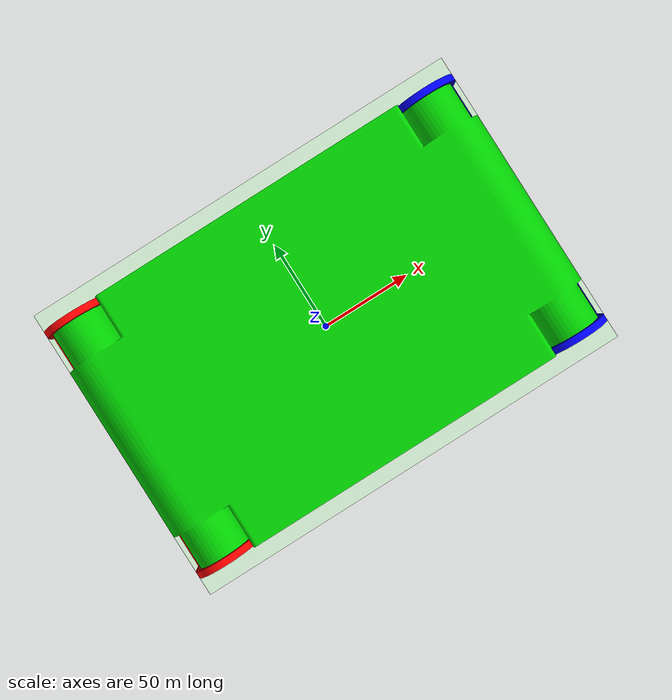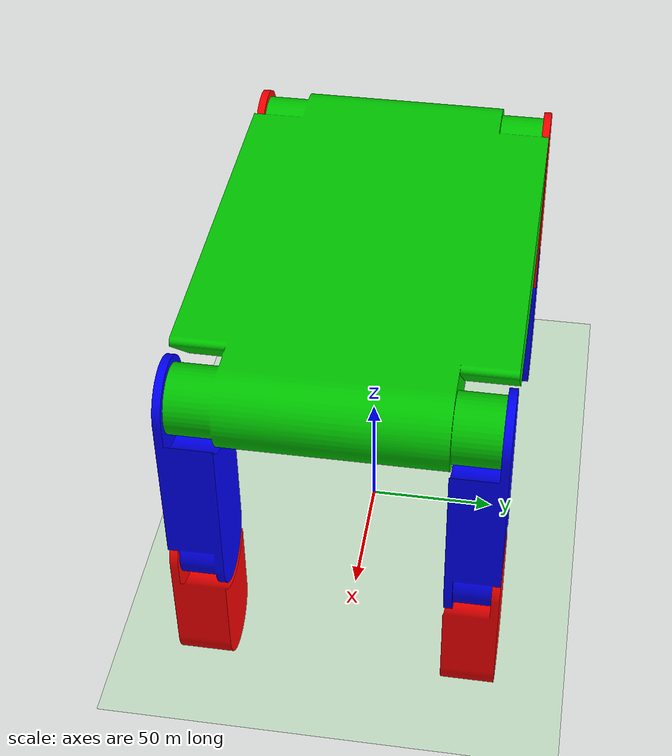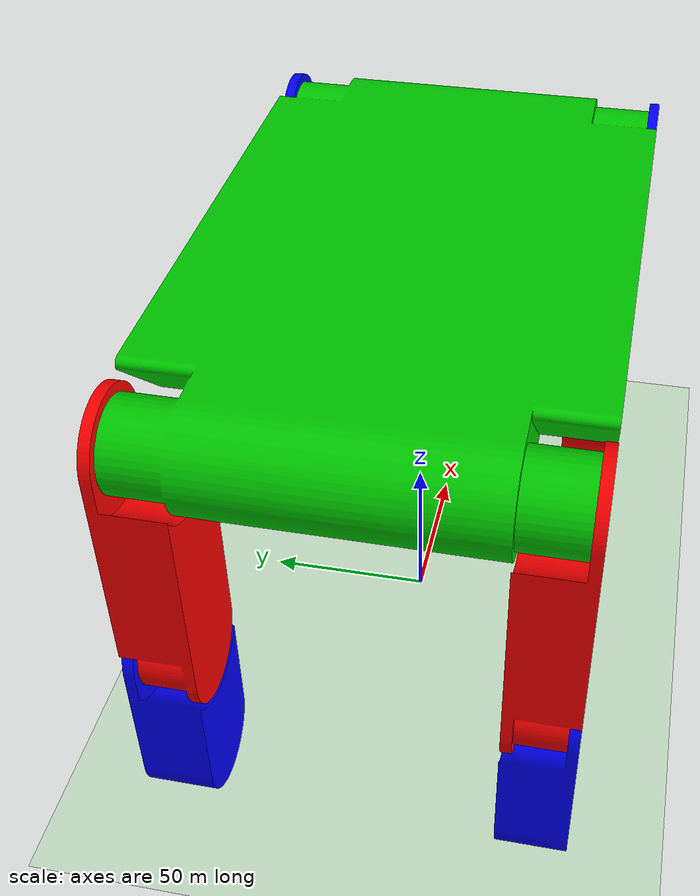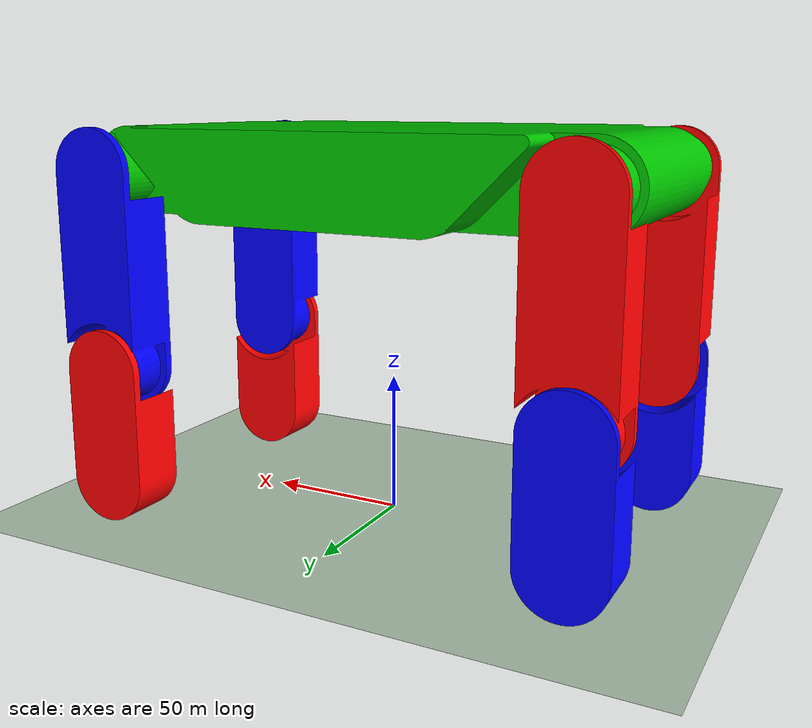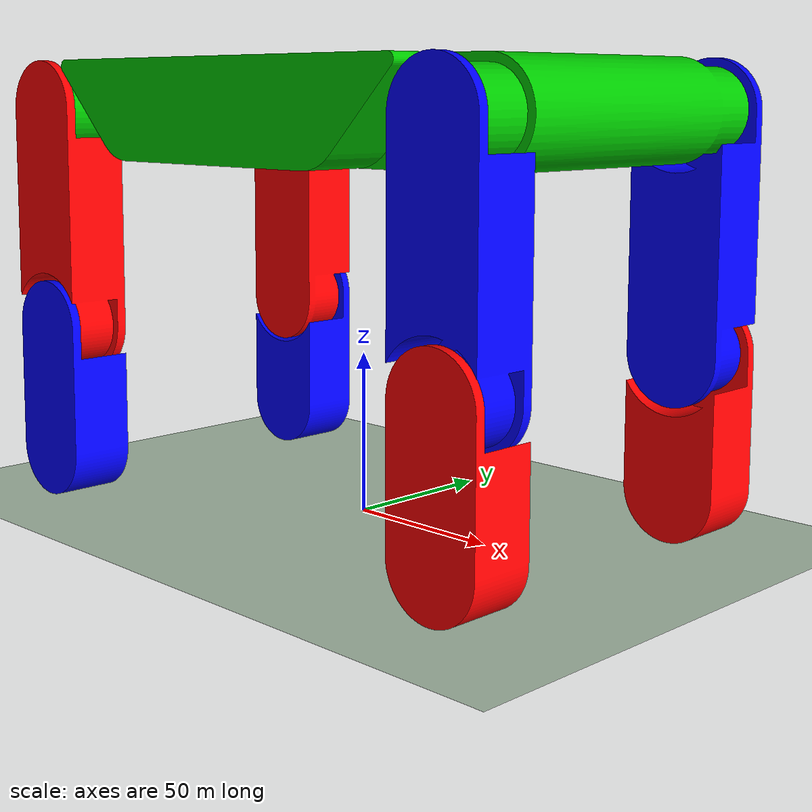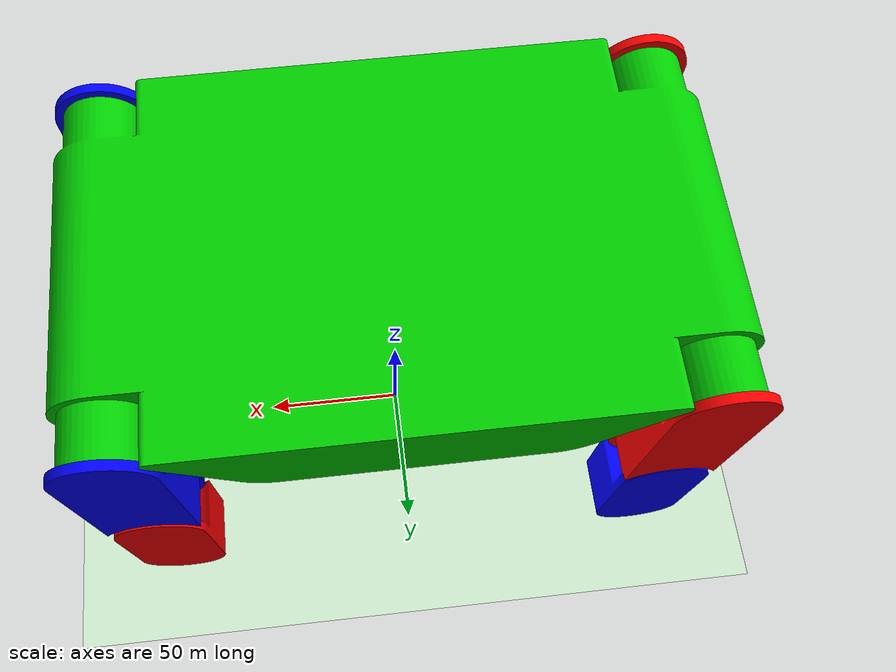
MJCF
<?xml version="1.0" ?>
<mujoco model="Piper v35">
	<compiler angle="degree" coordinate="local" inertiafromgeom="true" settotalmass="1"/>
	<default>
		<joint armature=".1" damping=".01" limited="true" solimplimit="0 .8 .03" solreflimit=".02 1" stiffness="8"/>
		<geom conaffinity="0" condim="3" contype="1" friction=".4 .1 .1" rgba="0.8 0.6 .4 1" solimp="0.0 0.8 0.01" solref="0.02 1"/>
		<motor ctrllimited="true" ctrlrange="-1 1"/>
	</default>
	<size nstack="300000" nuser_geom="1"/>
	<option gravity="0 0 -98.1" timestep="0.01"/>
	<asset>
		<texture builtin="gradient" height="100" rgb1=".4 .5 .6" rgb2="0 0 0" type="skybox" width="100"/>
		<texture builtin="flat" height="1278" mark="cross" markrgb="1 1 1" name="texgeom" random="0.01" rgb1="0.8 0.6 0.4" rgb2="0.8 0.6 0.4" type="cube" width="127"/>
		<texture builtin="checker" height="100" name="texplane" rgb1="0 0 0" rgb2="0.8 0.8 0.8" type="2d" width="100"/>
		<material name="groundplanemat" reflectance="0.5" shininess="1" specular="1" texrepeat="100 100" texture="texplane"/>
		<material name="geom" texture="texgeom" texuniform="true"/>
		<mesh file="piper_stl/Torso.stl" name="Torso" scale="1 1 1"/>
		<mesh file="piper_stl/FRTopLeg.stl" name="FRTopLeg" scale="1 1 1"/>
		<mesh file="piper_stl/FRBottomLeg.stl" name="FRBottomLeg" scale="1 1 1"/>
		<mesh file="piper_stl/FLTopLeg.stl" name="FLTopLeg" scale="1 1 1"/>
		<mesh file="piper_stl/FLBottomLeg.stl" name="FLBottomLeg" scale="1 1 1"/>
		<mesh file="piper_stl/BRTopLeg.stl" name="BRTopLeg" scale="1 1 1"/>
		<mesh file="piper_stl/BRBottomLeg.stl" name="BRBottomLeg" scale="1 1 1"/>
		<mesh file="piper_stl/BLTopLeg.stl" name="BLTopLeg" scale="1 1 1"/>
		<mesh file="piper_stl/BLBottomLeg.stl" name="BLBottomLeg" scale="1 1 1"/>
	</asset>
	<worldbody>
		<light cutoff="100" diffuse="1 1 1" dir="-0 0 -1.3" directional="true" exponent="1" pos="0 0 1.3" specular=".1 .1 .1"/>
		<geom conaffinity="1" condim="3" material="groundplanemat" name="floor" pos="0 0 0" rgba="0.8 0.9 0.8 1" size="1000 1000 1000" type="plane"/>
		<body name="Torso" pos="0 0 0">
			<geom mesh="Torso" type="mesh" rgba="0 0.8 0 1"/>
			<joint armature="0" axis="1 0 0" damping="0" limited="false" name="slide_x" pos="0 0 0" stiffness="0" type="slide"/>
			<joint armature="0" axis="0 1 0" damping="0" limited="false" name="slide_y" pos="0 0 0" stiffness="0" type="slide"/>
			<joint armature="0" axis="0 0 1" damping="0" limited="false" name="slide_z" pos="0 0 0" stiffness="0" type="slide"/>
			<joint armature="0" axis="1 0 0" damping="0" limited="false" name="hinge_x" pos="0 0 0" stiffness="0" type="hinge"/>
			<joint armature="0" axis="0 1 0" damping="0" limited="false" name="hinge_y" pos="0 0 0" stiffness="0" type="hinge"/>
			<joint armature="0" axis="0 0 1" damping="0" limited="false" name="hinge_z" pos="0 0 0" stiffness="0" type="hinge"/>
			<body name="FRTopLeg" pos="0.0 -40.0 0.0">
				<geom mesh="FRTopLeg" type="mesh" rgba="0 0 1 1"/>
				<joint axis="0.0 1.0 0.0" name="FRShoulder" pos="85.0 -17.0 125.0" type="hinge" range="-90 45"/>
				<body pos="85.0 -17.0 125.0">
					<geom pos="0 0 0" rgba="0 1.0 1.0 1" size="2" type="sphere"/>
				</body>
				<body name="FRBottomLeg" pos="0.0 0.0 0.0">
					<geom mesh="FRBottomLeg" type="mesh" rgba="1 0 0 1"/>
					<joint axis="0.0 1.0 0.0" name="FRElbow" pos="85.0 -17.0 55.0" type="hinge" range="-45 45"/>
					<body pos="85.0 -17.0 55.0">
						<geom pos="0 0 0" rgba="0 1.0 1.0 1" size="2" type="sphere"/>
					</body>
				</body>
			</body>
			<body name="FLTopLeg" pos="0.0 40.0 0.0">
				<geom mesh="FLTopLeg" type="mesh" rgba="0 0 1 1"/>
				<joint axis="0.0 -1.0 -0.0" name="FLShoulder" pos="85.0 17.0 125.0" type="hinge" range="-45 90"/>
				<body pos="85.0 17.0 125.0">
					<geom pos="0 0 0" rgba="0 1.0 1.0 1" size="2" type="sphere"/>
				</body>
				<body name="FLBottomLeg" pos="0.0 0.0 0.0">
					<geom mesh="FLBottomLeg" type="mesh" rgba="1 0 0 1"/>
					<joint axis="0.0 -1.0 -0.0" name="FLElbow" pos="85.0 17.0 55.0" type="hinge" range="-45 45"/>
					<body pos="85.0 17.0 55.0">
						<geom pos="0 0 0" rgba="0 1.0 1.0 1" size="2" type="sphere"/>
					</body>
				</body>
			</body>
			<body name="BRTopLeg" pos="-170.0 0.0 0.0">
				<geom mesh="BRTopLeg" type="mesh" rgba="1 0 0 1"/>
				<joint axis="0.0 1.0 0.0" name="BRHip" pos="85.0 -57.0 125.0" type="hinge" range="-45 90"/>
				<body pos="85.0 -57.0 125.0">
					<geom pos="0 0 0" rgba="0 1.0 1.0 1" size="2" type="sphere"/>
				</body>
				<body name="BRBottomLeg" pos="0.0 0.0 0.0">
					<geom mesh="BRBottomLeg" type="mesh" rgba="0 0 1 1"/>
					<joint axis="0.0 1.0 0.0" name="BRKnee" pos="85.0 -57.0 55.0" type="hinge" range="-45 45"/>
					<body pos="85.0 -57.0 55.0">
						<geom pos="0 0 0" rgba="0 1.0 1.0 1" size="2" type="sphere"/>
					</body>
				</body>
			</body>
			<body name="BLTopLeg" pos="-340.0 0.0 0.0">
				<geom mesh="BLTopLeg" type="mesh" rgba="1 0 0 1"/>
				<joint axis="0.0 -1.0 -0.0" name="BLHip" pos="255.0 57.0 125.0" type="hinge" range="-90 45"/>
				<body pos="255.0 57.0 125.0">
					<geom pos="0 0 0" rgba="0 1.0 1.0 1" size="2" type="sphere"/>
				</body>
				<body name="BLBottomLeg" pos="170.0 0.0 1.25">
					<geom mesh="BLBottomLeg" type="mesh" rgba="0 0 1 1"/>
					<joint axis="0.0 -1.0 -0.0" name="BLKnee" pos="85.0 57.0 55.0" type="hinge" range="-45 45"/>
					<body pos="85.0 57.0 55.0">
						<geom pos="0 0 0" rgba="0 1.0 1.0 1" size="2" type="sphere"/>
					</body>
				</body>
			</body>
		</body>
	</worldbody>
	<tendon/>
	<actuator>
		<motor gear="10000" joint="FRShoulder" name="FRShoulder"/>
		<motor gear="10000" joint="FRElbow" name="FRElbow"/>
		<motor gear="10000" joint="FLShoulder" name="FLShoulder"/>
		<motor gear="10000" joint="FLElbow" name="FLElbow"/>
		<motor gear="10000" joint="BRHip" name="BRHip"/>
		<motor gear="10000" joint="BRKnee" name="BRKnee"/>
		<motor gear="10000" joint="BLHip" name="BLHip"/>
		<motor gear="10000" joint="BLKnee" name="BLKnee"/>
	</actuator>
</mujoco>
